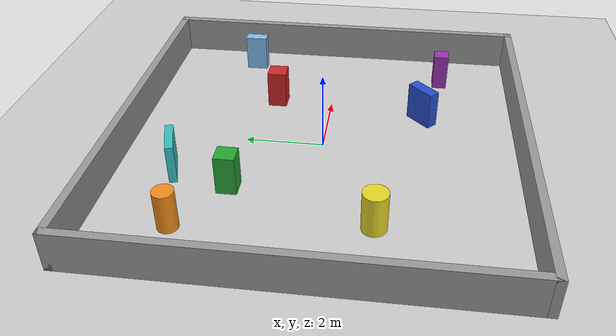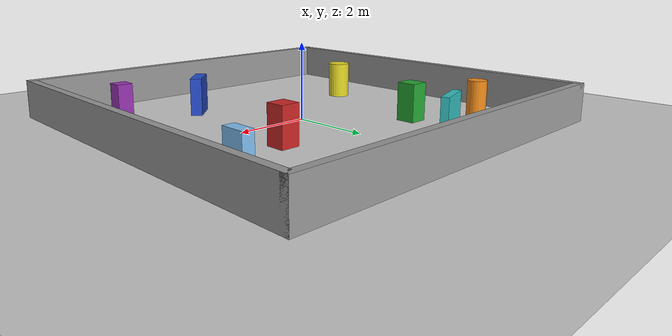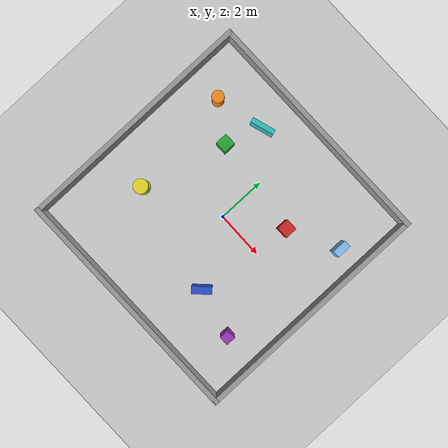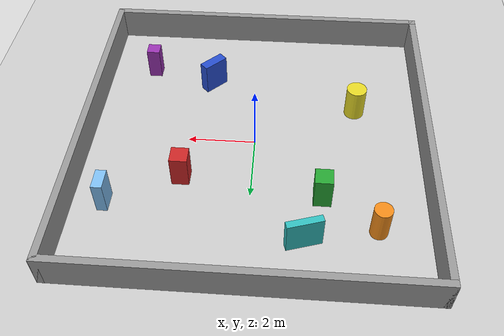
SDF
<?xml version="1.0" ?>
<sdf version="1.6">
  <world name="env_a">

    <include><uri>model://ground_plane</uri></include>

    <light name="sun" type="directional">
      <cast_shadows>true</cast_shadows>
      <pose>0 0 10 0 0 0</pose>
      <diffuse>1 1 1 1</diffuse>
      <specular>0.1 0.1 0.1 1</specular>
      <direction>-0.5 0.5 -1</direction>
    </light>

    <!-- ── Physics ─────────────────────────────────────────────── -->
    <physics type="ode">
      <real_time_update_rate>1000</real_time_update_rate>
      <max_step_size>0.001</max_step_size>
      <real_time_factor>1</real_time_factor>
    </physics>

    <!-- ── Boundary walls (10×10 m arena) ──────────────────────── -->
    <model name="wall_north"><static>true</static><pose>0 5 0.5 0 0 0</pose>
      <link name="link">
        <collision name="col"><geometry><box><size>10.2 0.2 1</size></box></geometry></collision>
        <visual name="vis"><geometry><box><size>10.2 0.2 1</size></box></geometry>
          <material><script><uri>file://media/materials/scripts/gazebo.material</uri>
            <name>Gazebo/Grey</name></script></material></visual>
      </link></model>

    <model name="wall_south"><static>true</static><pose>0 -5 0.5 0 0 0</pose>
      <link name="link">
        <collision name="col"><geometry><box><size>10.2 0.2 1</size></box></geometry></collision>
        <visual name="vis"><geometry><box><size>10.2 0.2 1</size></box></geometry>
          <material><script><uri>file://media/materials/scripts/gazebo.material</uri>
            <name>Gazebo/Grey</name></script></material></visual>
      </link></model>

    <model name="wall_east"><static>true</static><pose>5 0 0.5 0 0 0</pose>
      <link name="link">
        <collision name="col"><geometry><box><size>0.2 10.2 1</size></box></geometry></collision>
        <visual name="vis"><geometry><box><size>0.2 10.2 1</size></box></geometry>
          <material><script><uri>file://media/materials/scripts/gazebo.material</uri>
            <name>Gazebo/Grey</name></script></material></visual>
      </link></model>

    <model name="wall_west"><static>true</static><pose>-5 0 0.5 0 0 0</pose>
      <link name="link">
        <collision name="col"><geometry><box><size>0.2 10.2 1</size></box></geometry></collision>
        <visual name="vis"><geometry><box><size>0.2 10.2 1</size></box></geometry>
          <material><script><uri>file://media/materials/scripts/gazebo.material</uri>
            <name>Gazebo/Grey</name></script></material></visual>
      </link></model>

    <!-- ── Static obstacles ─────────────────────────────────────── -->
    <!-- Placed away from origin (TurtleBot3 spawn) and from each other -->
    <model name="obs_1"><static>true</static><pose>2.0  1.5 0.5 0 0 0</pose>
      <link name="link">
        <collision name="col"><geometry><box><size>0.5 0.5 1.0</size></box></geometry></collision>
        <visual name="vis"><geometry><box><size>0.5 0.5 1.0</size></box></geometry>
          <material><script><name>Gazebo/Red</name></script></material></visual>
      </link></model>

    <model name="obs_2"><static>true</static><pose>-2.0  2.0 0.5 0 0 0</pose>
      <link name="link">
        <collision name="col"><geometry><box><size>0.5 0.5 1.0</size></box></geometry></collision>
        <visual name="vis"><geometry><box><size>0.5 0.5 1.0</size></box></geometry>
          <material><script><name>Gazebo/Green</name></script></material></visual>
      </link></model>

    <model name="obs_3"><static>true</static><pose>1.5 -2.5 0.5 0 0 0.785</pose>
      <link name="link">
        <collision name="col"><geometry><box><size>0.8 0.3 1.0</size></box></geometry></collision>
        <visual name="vis"><geometry><box><size>0.8 0.3 1.0</size></box></geometry>
          <material><script><name>Gazebo/Blue</name></script></material></visual>
      </link></model>

    <model name="obs_4"><static>true</static><pose>-3.0 -1.5 0.5 0 0 0</pose>
      <link name="link">
        <collision name="col"><geometry><cylinder><radius>0.3</radius><length>1.0</length></cylinder></geometry></collision>
        <visual name="vis"><geometry><cylinder><radius>0.3</radius><length>1.0</length></cylinder></geometry>
          <material><script><name>Gazebo/Yellow</name></script></material></visual>
      </link></model>

    <model name="obs_5"><static>true</static><pose>3.5 -3.0 0.5 0 0 0</pose>
      <link name="link">
        <collision name="col"><geometry><box><size>0.4 0.4 1.0</size></box></geometry></collision>
        <visual name="vis"><geometry><box><size>0.4 0.4 1.0</size></box></geometry>
          <material><script><name>Gazebo/Purple</name></script></material></visual>
      </link></model>

    <model name="obs_6"><static>true</static><pose>-1.5  3.5 0.5 0 0 0.3</pose>
      <link name="link">
        <collision name="col"><geometry><box><size>1.0 0.2 1.0</size></box></geometry></collision>
        <visual name="vis"><geometry><box><size>1.0 0.2 1.0</size></box></geometry>
          <material><script><name>Gazebo/Turquoise</name></script></material></visual>
      </link></model>

    <model name="obs_7"><static>true</static><pose>-3.5  3.0 0.5 0 0 0</pose>
      <link name="link">
        <collision name="col"><geometry><cylinder><radius>0.25</radius><length>1.0</length></cylinder></geometry></collision>
        <visual name="vis"><geometry><cylinder><radius>0.25</radius><length>1.0</length></cylinder></geometry>
          <material><script><name>Gazebo/Orange</name></script></material></visual>
      </link></model>

    <model name="obs_8"><static>true</static><pose>4.0  2.5 0.5 0 0 0</pose>
      <link name="link">
        <collision name="col"><geometry><box><size>0.3 0.6 1.0</size></box></geometry></collision>
        <visual name="vis"><geometry><box><size>0.3 0.6 1.0</size></box></geometry>
          <material><script><name>Gazebo/SkyBlue</name></script></material></visual>
      </link></model>

    <!-- ── TurtleBot3 Waffle Pi ──────────────────────────────────── -->

  </world>
</sdf>
